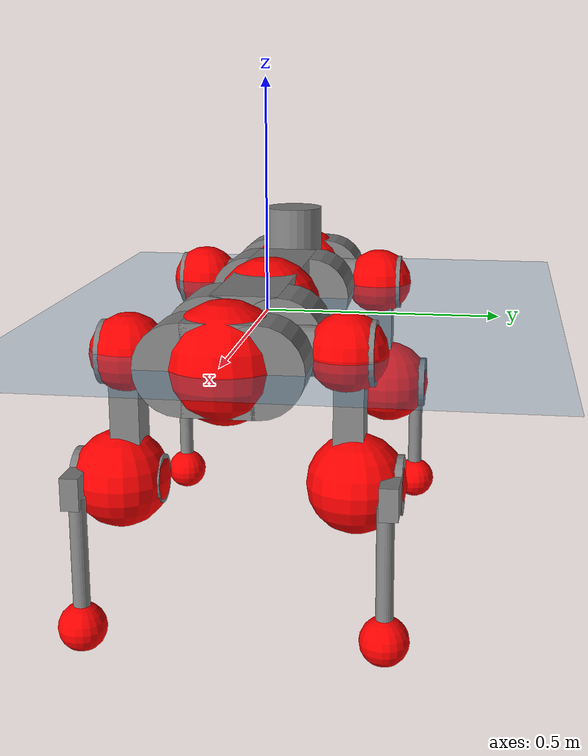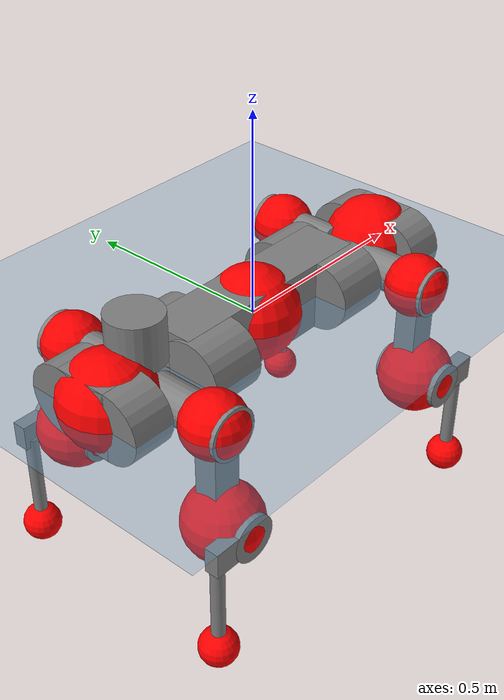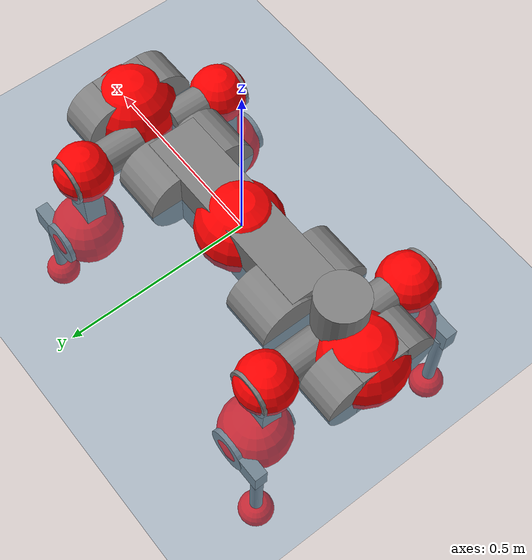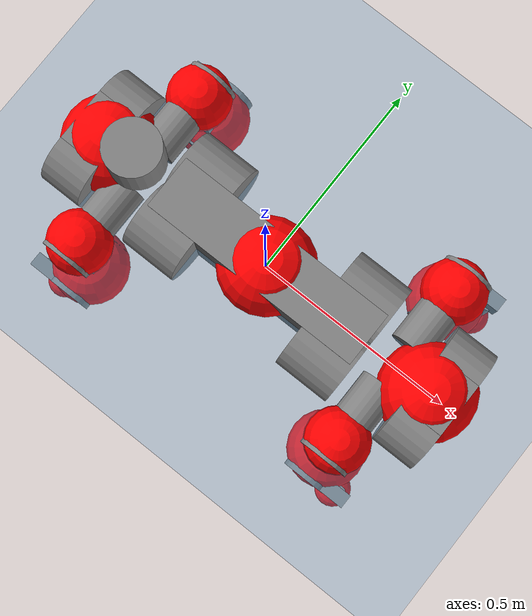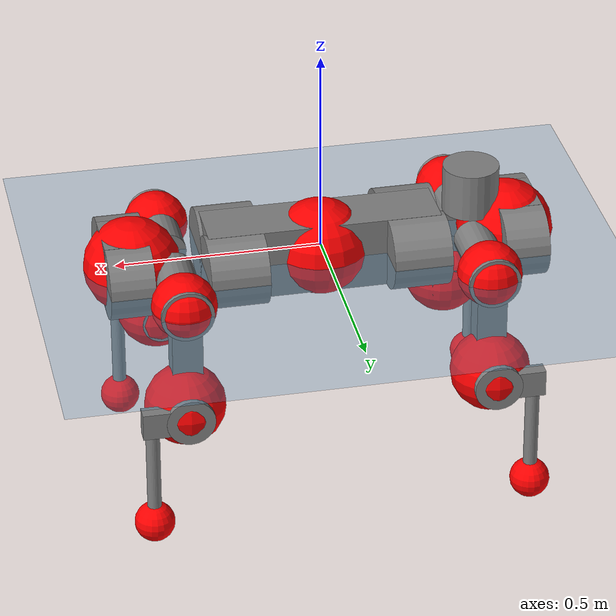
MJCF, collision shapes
<mujoco model="anymal_c">
  <compiler angle="radian" assetdir="assets" balanceinertia="true" inertiafromgeom="false"/>

  <option timestep="0.005" density="1.2" viscosity="2e-05"/>

  <size nkey="1"/>

  <visual>
    <quality shadowsize="8192"/>
    <map shadowclip="0.5"/>
  </visual>

  <default>
    <default class="/">
      <material specular="0" shininess="0.25"/>
      <geom contype="0" conaffinity="0" group="1" solref="-1000 -80"/>
      <site size="0.01 0.005 0.005" group="5"/>
      <general forcelimited="true" forcerange="-80 80" biastype="affine" gainprm="80" biasprm="0 -80 -2"/>
      <default class="anymal_c">
        <joint armature="0.01" damping="0.01" frictionloss="0.1"/>
        <default class="visual">
          <geom type="mesh" group="2"/>
          <default class="visual_zflip"/>
        </default>
        <default class="collision">
          <geom type="cylinder" group="3"/>
          <default class="foot">
            <geom size="0.03 0 0" type="sphere" condim="6" priority="1" friction="0.8 0.02 0.01" solimp="0.015 1 0.03"/>
          </default>
        </default>
      </default>
      <default class="reward_collision_sphere">
        <geom group="5" rgba="1 0 0 1"/>
      </default>
    </default>
  </default>

  <asset>
    <texture type="skybox" colorspace="auto" name="//unnamed_texture_0" builtin="gradient" rgb1="0.95 0.95 0.95" rgb2="0.95 0.95 0.95" width="100" height="600"/>
    <texture type="2d" colorspace="auto" name="texplane" builtin="checker" rgb1="0.345 0.575 0.748" rgb2="0.345 0.575 0.748" markrgb="1 1 1" width="512" height="512"/>
    <texture type="2d" colorspace="linear" name="base" file="base.png"/>
    <texture type="2d" colorspace="linear" name="top_shell" file="top_shell.png"/>
    <texture type="2d" colorspace="linear" name="bottom_shell" file="bottom_shell.png"/>
    <texture type="2d" colorspace="linear" name="remote" file="remote.png"/>
    <texture type="2d" colorspace="linear" name="hatch" file="hatch.png"/>
    <texture type="2d" colorspace="linear" name="handle" file="handle.png"/>
    <texture type="2d" colorspace="linear" name="face" file="face.png"/>
    <texture type="2d" colorspace="linear" name="battery" file="battery.png"/>
    <texture type="2d" colorspace="linear" name="lidar_cage" file="lidar_cage.png"/>
    <texture type="2d" colorspace="linear" name="depth_camera" file="depth_camera.png"/>
    <texture type="2d" colorspace="linear" name="wide_angle_camera" file="wide_angle_camera.png"/>
    <texture type="2d" colorspace="linear" name="lidar" file="lidar.png"/>
    <texture type="2d" colorspace="linear" name="drive" file="drive.png"/>
    <texture type="2d" colorspace="linear" name="hip_l" file="hip_l.png"/>
    <texture type="2d" colorspace="linear" name="shank_l" file="shank_l.png"/>
    <texture type="2d" colorspace="linear" name="foot" file="foot.png"/>
    <texture type="2d" colorspace="linear" name="thigh" file="thigh.png"/>
    <texture type="2d" colorspace="linear" name="shank_r" file="shank_r.png"/>
    <texture type="2d" colorspace="linear" name="hip_r" file="hip_r.png"/>
    <material name="MatPlane" class="/" texture="texplane" texuniform="true" texrepeat="2 2" specular="0.9" shininess="0.5"/>
    <material name="black_plastic" class="/" rgba="0.007 0.007 0.007 1"/>
    <material name="green" class="/" rgba="0.052 0.178 0.033 1"/>
    <material name="red" class="/" rgba="0.178 0.006 0.005 1"/>
    <material name="yellow" class="/" rgba="0.178 0.119 0.006 1"/>
    <material name="lwl" class="/" rgba="0.8 0.8 0.8 1"/>
    <material name="base" class="/" texture="base"/>
    <material name="top_shell" class="/" texture="top_shell"/>
    <material name="bottom_shell" class="/" texture="bottom_shell"/>
    <material name="hip_l" class="/" texture="hip_l"/>
    <material name="thigh" class="/" texture="thigh"/>
    <material name="shank_l" class="/" texture="shank_l"/>
    <material name="foot" class="/" texture="foot"/>
    <material name="hip_r" class="/" texture="hip_r"/>
    <material name="shank" class="/" texture="shank_r"/>
    <material name="hatch" class="/" texture="hatch"/>
    <material name="remote" class="/" texture="remote"/>
    <material name="handle" class="/" texture="handle"/>
    <material name="face" class="/" texture="face"/>
    <material name="depth_camera" class="/" texture="depth_camera"/>
    <material name="wide_angle_camera" class="/" texture="wide_angle_camera"/>
    <material name="battery" class="/" texture="battery"/>
    <material name="lidar_cage" class="/" texture="lidar_cage"/>
    <material name="lidar" class="/" texture="lidar"/>
    <material name="drive" class="/" texture="drive"/>
    <mesh name="base_0" class="/" file="base_0.obj"/>
    <mesh name="base_1" class="/" file="base_1.obj"/>
    <mesh name="base_2" class="/" file="base_2.obj"/>
    <mesh name="base_3" class="/" file="base_3.obj"/>
    <mesh name="base_4" class="/" file="base_4.obj"/>
    <mesh name="base_5" class="/" file="base_5.obj"/>
    <mesh name="top_shell" class="/" file="top_shell.obj"/>
    <mesh name="bottom_shell" class="/" file="bottom_shell.obj"/>
    <mesh name="remote" class="/" file="remote.obj"/>
    <mesh name="handle" class="/" file="handle.obj"/>
    <mesh name="face" class="/" file="face.obj"/>
    <mesh name="wide_angle_camera" class="/" file="wide_angle_camera.obj"/>
    <mesh name="depth_camera" class="/" file="depth_camera.obj"/>
    <mesh name="battery" class="/" file="battery.obj"/>
    <mesh name="lidar_cage" class="/" file="lidar_cage.obj"/>
    <mesh name="lidar" class="/" file="lidar.obj"/>
    <mesh name="drive" class="/" file="drive.obj"/>
    <mesh name="hip_l" class="/" file="hip_l.obj"/>
    <mesh name="thigh" class="/" file="thigh.obj"/>
    <mesh name="shank_l" class="/" file="shank_l.obj"/>
    <mesh name="foot" class="/" file="foot.obj"/>
    <mesh name="hip_r" class="/" file="hip_r.obj"/>
    <mesh name="hatch" class="/" file="hatch.obj"/>
    <mesh name="shank_r" class="/" file="shank_r.obj"/>
  </asset>

  <worldbody>
    <geom name="floor" class="/" size="100 100 0.125" type="plane" group="0" material="MatPlane"/>
    <light name="toplight_shadow" class="/" pos="0 0 5" dir="0.0990148 0.0990148 -0.990148" type="directional" ambient="0.04 0.04 0.04" diffuse="0.55 0.55 0.55" specular="0.12 0.12 0.12"/>
    <light name="toplight_fill" class="/" pos="0 0 5" dir="0.0990148 0.0990148 -0.990148" type="directional" castshadow="false" ambient="0.04 0.04 0.04" diffuse="0.3 0.3 0.3" specular="0.08 0.08 0.08"/>
    <body name="trunk" childclass="anymal_c" pos="0.00230652 0.00234108 0.000111396" quat="1 0.000480519 0.000161608 0.000492207">
      <inertial pos="0.00271737 -0.000615681 0.0430785" quat="0.508855 0.491886 0.509003 0.48993" mass="17.7716" diaginertia="0.628207 0.653806 0.111877"/>
      <joint name="//unnamed_joint_0" type="free" armature="0" damping="0" frictionloss="0"/>
      <geom name="//unnamed_geom_1" class="visual" material="green" mesh="base_0"/>
      <geom name="//unnamed_geom_2" class="visual" material="yellow" mesh="base_1"/>
      <geom name="//unnamed_geom_3" class="visual" material="red" mesh="base_2"/>
      <geom name="//unnamed_geom_4" class="visual" material="black_plastic" mesh="base_3"/>
      <geom name="//unnamed_geom_5" class="visual" material="lwl" mesh="base_4"/>
      <geom name="//unnamed_geom_6" class="visual" material="base" mesh="base_5"/>
      <geom name="trunk_1" class="collision" size="0.282572 0.068207 0.0876948" type="box"/>
      <geom name="trunk_2" class="collision" size="0.0876948 0.070643" pos="0.220653 0.0710704 0" quat="0.707107 0 0.707107 0"/>
      <geom name="trunk_3" class="collision" size="0.0876948 0.070643" pos="-0.220653 0.0710704 0" quat="0.707107 0 0.707107 0"/>
      <geom name="trunk_4" class="collision" size="0.0876948 0.070643" pos="0.220653 -0.0710704 0" quat="0.707107 0 0.707107 0"/>
      <geom name="trunk_5" class="collision" size="0.0876948 0.070643" pos="-0.220653 -0.0710704 0" quat="0.707107 0 0.707107 0"/>
      <geom name="//unnamed_geom_12" class="visual" material="top_shell" mesh="top_shell"/>
      <geom name="//unnamed_geom_13" class="visual" material="bottom_shell" mesh="bottom_shell"/>
      <geom name="//unnamed_geom_14" class="visual" material="remote" mesh="remote"/>
      <geom name="//unnamed_geom_15" class="visual" material="handle" mesh="handle"/>
      <geom name="//unnamed_geom_16" class="visual" pos="0.420508 0 0" quat="1 0 0 0" material="face" mesh="face"/>
      <geom name="trunk_6" class="collision" size="0.0535912 0.068207 0.0876948" pos="0.476306 0 0" type="box"/>
      <geom name="//unnamed_geom_18" class="collision" size="0.0876948 0.0535912" pos="0.476306 0.0710704 0" quat="0.707107 0 0.707107 0"/>
      <geom name="//unnamed_geom_19" class="collision" size="0.0876948 0.0535912" pos="0.476306 -0.0710704 0" quat="0.707107 0 0.707107 0"/>
      <geom name="//unnamed_geom_20" class="visual" pos="0.468337 0 -0.0251659" quat="0.965926 0 0.258819 0" material="depth_camera" mesh="depth_camera"/>
      <geom name="//unnamed_geom_21" class="visual" pos="0.520436 0 0.0133738" material="wide_angle_camera" mesh="wide_angle_camera"/>
      <geom name="//unnamed_geom_22" class="visual_zflip" pos="-0.420508 0 0" quat="0 0 0 1" material="face" mesh="face"/>
      <geom name="trunk_7" class="collision" size="0.0535912 0.068207 0.0876948" pos="-0.476306 0 0" quat="0 0 0 1" type="box"/>
      <geom name="//unnamed_geom_24" class="collision" size="0.0876948 0.0535912" pos="-0.476306 -0.0710704 0" quat="0 -0.707107 0 0.707107"/>
      <geom name="//unnamed_geom_25" class="collision" size="0.0876948 0.0535912" pos="-0.476306 0.0710704 0" quat="0 -0.707107 0 0.707107"/>
      <geom name="//unnamed_geom_26" class="visual" pos="-0.468337 0 -0.0251659" quat="0 -0.258819 0 0.965926" material="depth_camera" mesh="depth_camera"/>
      <geom name="//unnamed_geom_27" class="visual_zflip" pos="-0.520436 0 0.0133738" quat="0 0 0 1" material="wide_angle_camera" mesh="wide_angle_camera"/>
      <geom name="//unnamed_geom_28" class="visual" material="battery" mesh="battery"/>
      <geom name="//unnamed_geom_29" class="visual" pos="0 0.0776346 0.026873" quat="0.683013 -0.183013 0.183013 0.683013" material="depth_camera" mesh="depth_camera"/>
      <geom name="//unnamed_geom_30" class="visual" pos="0 -0.0776346 0.026873" quat="0.683013 0.183013 0.183013 -0.683013" material="depth_camera" mesh="depth_camera"/>
      <geom name="//unnamed_geom_31" class="visual" pos="-0.369276 0 0.0656628" quat="1 0 0 0" material="lidar_cage" mesh="lidar_cage"/>
      <geom name="trunk_8" class="collision" size="0.068207 0.0584632" pos="-0.369276 0 0.119265"/>
      <geom name="//unnamed_geom_33" class="visual" pos="-0.369276 3.1268e-07 0.127037" quat="0.707107 0 0 -0.707107" material="lidar" mesh="lidar"/>
      <geom name="//unnamed_geom_34" class="visual" pos="0.304247 0.105547 2.10313e-09" quat="0.258819 0.965926 0 0" material="drive" mesh="drive"/>
      <geom name="//unnamed_geom_35" class="visual" pos="0.304247 -0.105547 -2.10313e-09" quat="0.258819 -0.965926 0 0" material="drive" mesh="drive"/>
      <geom name="//unnamed_geom_36" class="visual" pos="-0.304247 0.105547 -2.10313e-09" quat="0 0 0.965926 -0.258819" material="drive" mesh="drive"/>
      <geom name="//unnamed_geom_37" class="visual" pos="-0.304247 -0.105547 2.10313e-09" quat="0 0 -0.965926 -0.258819" material="drive" mesh="drive"/>
      <geom name="//unnamed_geom_38" class="visual" pos="0.117681 0 0.0652161" quat="1 0 0 0" material="hatch" mesh="hatch"/>
      <geom name="//unnamed_geom_39" class="reward_collision_sphere" size="0.116926"/>
      <geom name="//unnamed_geom_40" class="reward_collision_sphere" size="0.116926" pos="0.456523 0 0"/>
      <geom name="//unnamed_geom_41" class="reward_collision_sphere" size="0.116926" pos="-0.456523 0 0"/>
      <site name="imu" pos="0.249405 0.0444372 0.0351319" size="0.00974386"/>
      <camera name="track" pos="0 -2.03058 0" quat="0.707107 0.707107 0 0" mode="trackcom"/>
      <camera name="ego_camera" pos="0.456523 0 -0.0357349" quat="-0.5 -0.5 0.5 0.5"/>
      <body name="LF_HIP" pos="0.305281 0.106385 0.004326" quat="0.257736 0.96621 -0.00314643 0.000699393">
        <inertial pos="0.0577664 -0.0132852 -0.00923671" quat="-0.124132 0.702859 -0.130969 0.688061" mass="2.38675" diaginertia="0.00587906 0.00489998 0.00173908"/>
        <joint name="LF_HAA" pos="0 0 0" axis="0.999997 0.00142219 -0.00179875" range="-0.823755 0.502718" armature="0.00822904" damping="0.02299" frictionloss="0.0858218"/>
        <geom name="//unnamed_geom_42" class="visual" pos="0 0.000123717 -2.03205e-05" quat="0.258819 -0.965926 0 0" material="hip_l" mesh="hip_l"/>
        <geom name="//unnamed_geom_43" class="visual" pos="0.0607683 -0.0736009 -0.0415917" quat="0.183013 -0.683013 0.683013 0.183013" material="drive" mesh="drive"/>
        <geom name="//unnamed_geom_44" class="collision" size="0.0487193 0.068207" pos="0.0607683 -0.0121427 -0.00616873" quat="-0.353553 -0.612372 0.612372 -0.353553"/>
        <body name="LF_THIGH" pos="0.0615248 -0.0742742 -0.0412621" quat="0.183026 -0.683037 0.682987 0.183001">
          <inertial pos="0.0307077 0.00538213 -0.212255" quat="0.993254 -0.0140424 -0.0790104 0.0837015" mass="2.8034" diaginertia="0.0340349 0.0330136 0.00249231"/>
          <joint name="LF_HFE" pos="0 0 0" axis="0.999985 0.00173076 0.00523723" range="-3.15679 3.00779" armature="0.0100195" damping="0.0370568" frictionloss="0.0962724"/>
          <geom name="//unnamed_geom_45" class="visual" pos="-1.58349e-05 -2.49521e-08 0" quat="0.707107 0 0 -0.707107" material="thigh" mesh="thigh"/>
          <geom name="//unnamed_geom_46" class="collision" size="0.0633351 0.0389755" pos="0.0405798 0 0" quat="0.5 0.5 -0.5 -0.5"/>
          <geom name="//unnamed_geom_47" class="collision" size="0.0365395 0.0292316 0.137694" pos="0.0304349 0 -0.126246" quat="0.707107 0 0 -0.707107" type="box"/>
          <geom name="//unnamed_geom_48" class="visual" pos="0.101754 0 -0.254611" quat="1 0 0 0" material="drive" mesh="drive"/>
          <geom name="//unnamed_geom_49" class="collision" size="0.0487193 0.068207" pos="0.0307392 0 -0.254611" quat="0.707107 0 0.707107 0"/>
          <geom name="//unnamed_geom_50" class="reward_collision_sphere" size="0.0779509" pos="0.0253624 0 0"/>
          <body name="LF_SHANK" pos="0.0944515 -0.00601883 -0.256352" quat="1 1.48006e-05 0.000103532 2.70289e-05">
            <inertial pos="0.00384434 -0.0615594 -0.0739742" quat="0.993267 -0.11361 0.000241019 -0.0226744" mass="0.511446" diaginertia="0.0107042 0.00974905 0.000634475"/>
            <joint name="LF_KFE" pos="0 0 0" axis="0.999996 0.00213271 0.00200513" stiffness="0.0313809" range="-3.17583 3.2299" armature="0.0102374" damping="0.00675388" frictionloss="0.0863253"/>
            <geom name="//unnamed_geom_51" class="visual" pos="-5.16341e-06 -2.75316e-05 0" quat="0.707107 0 0 -0.707107" material="shank_l" mesh="shank_l"/>
            <geom name="LF_kfe_act" class="collision" size="0.0584632 0.0194877" pos="0.0202899 0 0" quat="0.5 0.5 -0.5 -0.5"/>
            <geom name="//unnamed_geom_53" class="collision" size="0.0560262 0.0328855 0.0185133" pos="0.0202899 -0.0583782 0" quat="0.5 0.5 -0.5 -0.5" type="box"/>
            <geom name="//unnamed_geom_54" class="visual" pos="0.0132392 -0.0893038 -0.301933" quat="0.382683 0 0 -0.92388" material="foot" mesh="foot"/>
            <geom name="LF_calf" class="collision" size="0.0170518 0.137634" pos="0.0132392 -0.0892949 -0.150966" quat="0.707107 0 0 -0.707107"/>
            <geom name="LF_foot" class="foot" size="0.0352182" pos="0.0132392 -0.0892949 -0.281832" quat="0.707107 0 0 -0.707107"/>
            <geom name="//unnamed_geom_57" class="reward_collision_sphere" size="0.0974386" pos="-0.0507248 0 0"/>
            <geom name="//unnamed_geom_58" class="reward_collision_sphere" size="0.0487193" pos="0.0132392 -0.0892949 -0.281832"/>
            <site name="LF_foot" class="foot" pos="0.0132392 -0.0892949 -0.281832" quat="0.707107 0 0 -0.707107" size="0.00974386"/>
          </body>
        </body>
      </body>
      <body name="RF_HIP" pos="0.304543 -0.105514 -0.00563307" quat="0.259179 -0.965829 0.000701669 -5.89285e-05">
        <inertial pos="0.0556864 0.0175539 -0.00702918" quat="0.126865 0.675709 0.153355 0.709793" mass="2.40737" diaginertia="0.00585727 0.00496778 0.00178664"/>
        <joint name="RF_HAA" pos="0 0 0" axis="0.999999 -0.00109888 -0.000237833" range="-0.542231 0.752068" armature="0.00981364" damping="0.00971051" frictionloss="0.104408"/>
        <geom name="//unnamed_geom_59" class="visual" pos="0 -0.000123717 -2.03204e-05" quat="0.258819 0.965926 0 0" material="hip_r" mesh="hip_r"/>
        <geom name="//unnamed_geom_60" class="visual" pos="0.0607683 0.0736009 -0.0415917" quat="0.183013 0.683013 0.683013 -0.183013" material="drive" mesh="drive"/>
        <geom name="//unnamed_geom_61" class="collision" size="0.0487193 0.068207" pos="0.0607683 0.0121427 -0.00616873" quat="-0.353553 0.612372 0.612372 0.353553"/>
        <body name="RF_THIGH" pos="0.0610984 0.0700383 -0.0341082" quat="0.182846 0.68326 0.682823 -0.182962">
          <inertial pos="0.0321179 1.88657e-05 -0.21348" quat="0.993598 -0.0232642 -0.0497108 0.0987484" mass="2.693" diaginertia="0.0303066 0.0300554 0.00221941"/>
          <joint name="RF_HFE" pos="0 0 0" axis="0.999987 -0.00262354 0.00448415" stiffness="0.00591785" range="-3.02682 3.07352" armature="0.0112385" damping="0.0136951" frictionloss="0.108182"/>
          <geom name="//unnamed_geom_62" class="visual" pos="-1.58349e-05 -2.49521e-08 0" quat="0.707107 0 0 -0.707107" material="thigh" mesh="thigh"/>
          <geom name="//unnamed_geom_63" class="collision" size="0.0633351 0.0389755" pos="0.0405798 0 0" quat="0.5 0.5 0.5 0.5"/>
          <geom name="//unnamed_geom_64" class="collision" size="0.0365395 0.0292316 0.137694" pos="0.0304349 0 -0.126246" quat="0.707107 0 0 0.707107" type="box"/>
          <geom name="//unnamed_geom_65" class="visual" pos="0.101754 0 -0.254611" quat="1 0 0 0" material="drive" mesh="drive"/>
          <geom name="//unnamed_geom_66" class="collision" size="0.0487193 0.068207" pos="0.0307392 0 -0.254611" quat="0.707107 0 0.707107 0"/>
          <geom name="//unnamed_geom_67" class="reward_collision_sphere" size="0.0779509" pos="0.0253624 0 0"/>
          <body name="RF_SHANK" pos="0.0999876 0.00240406 -0.255156" quat="1 0.000228298 0.000253328 8.17958e-05">
            <inertial pos="0.0081473 0.0633469 -0.0795566" quat="0.993187 0.11389 -0.000159073 0.0246845" mass="0.618323" diaginertia="0.0120663 0.00994975 0.000740685"/>
            <joint name="RF_KFE" pos="0 0 0" axis="0.999999 -0.00101557 0.000629766" range="-3.08991 3.1463" armature="0.00832602" damping="0.00940805" frictionloss="0.0973431"/>
            <geom name="//unnamed_geom_68" class="visual" pos="-5.16338e-06 2.75315e-05 0" quat="0.707107 0 0 0.707107" material="shank" mesh="shank_r"/>
            <geom name="RF_kfe_act" class="collision" size="0.0584632 0.0194877" pos="0.0202899 0 0" quat="0.5 0.5 0.5 0.5"/>
            <geom name="//unnamed_geom_70" class="collision" size="0.0560262 0.0328855 0.0185133" pos="0.0202899 0.0583782 0" quat="0.5 0.5 0.5 0.5" type="box"/>
            <geom name="//unnamed_geom_71" class="visual" pos="0.0132392 0.0893038 -0.301933" quat="0.382683 0 0 0.92388" material="foot" mesh="foot"/>
            <geom name="RF_calf" class="collision" size="0.0170518 0.137634" pos="0.0132392 0.0892949 -0.150966" quat="0.707107 0 0 0.707107"/>
            <geom name="RF_foot" class="foot" size="0.0307314" pos="0.0132392 0.0892949 -0.281832" quat="0.707107 0 0 0.707107"/>
            <geom name="//unnamed_geom_74" class="reward_collision_sphere" size="0.0974386" pos="-0.0507248 0 0"/>
            <geom name="//unnamed_geom_75" class="reward_collision_sphere" size="0.0487193" pos="0.0132392 0.0892949 -0.281832"/>
            <site name="RF_foot" class="foot" pos="0.0132392 0.0892949 -0.281832" quat="0.707107 0 0 0.707107" size="0.00974386"/>
          </body>
        </body>
      </body>
      <body name="LH_HIP" pos="-0.305723 0.105577 0.00523961" quat="0.000179656 0.00028368 0.965938 -0.258773">
        <inertial pos="0.0576111 0.0132008 -0.0023384" quat="0.140349 0.685172 0.121912 0.704257" mass="2.339" diaginertia="0.00578595 0.00527379 0.0018627"/>
        <joint name="LH_HAA" pos="0 0 0" axis="0.999999 -0.000438939 -0.00141341" stiffness="0.00641648" range="-0.626733 0.620684" armature="0.0096726" damping="0.0127284" frictionloss="0.0732466"/>
        <geom name="//unnamed_geom_76" class="visual" pos="0 -0.000123717 -2.03204e-05" quat="-0.258819 -0.965926 0 0" material="hip_r" mesh="hip_r"/>
        <geom name="//unnamed_geom_77" class="visual" pos="0.0607683 0.0736009 -0.0415917" quat="0.183013 0.683013 0.683013 -0.183013" material="drive" mesh="drive"/>
        <geom name="//unnamed_geom_78" class="collision" size="0.0487193 0.068207" pos="0.0607683 0.0121427 -0.00616873" quat="-0.353553 0.612372 0.612372 0.353553"/>
        <body name="LH_THIGH" pos="0.0608742 0.072512 -0.0341438" quat="0.183019 0.682997 0.683024 -0.183021">
          <inertial pos="0.0359416 0.00212122 -0.212342" quat="0.994744 0.0093374 -0.0636003 0.0796987" mass="2.78165" diaginertia="0.0351388 0.0328985 0.00255746"/>
          <joint name="LH_HFE" pos="0 0 0" axis="0.999728 0.0107095 0.0207221" range="-3.04177 3.09188" armature="0.010385" damping="0.0155098" frictionloss="0.0958729"/>
          <geom name="//unnamed_geom_79" class="visual" pos="-1.58349e-05 -2.49521e-08 0" quat="0.707107 0 0 -0.707107" material="thigh" mesh="thigh"/>
          <geom name="//unnamed_geom_80" class="collision" size="0.0633351 0.0389755" pos="0.0405798 0 0" quat="0.5 0.5 -0.5 -0.5"/>
          <geom name="//unnamed_geom_81" class="collision" size="0.0365395 0.0292316 0.137694" pos="0.0304349 0 -0.126246" quat="0.707107 0 0 -0.707107" type="box"/>
          <geom name="//unnamed_geom_82" class="visual" pos="0.101754 0 -0.254611" quat="1 0 0 0" material="drive" mesh="drive"/>
          <geom name="//unnamed_geom_83" class="collision" size="0.0487193 0.068207" pos="0.0307392 0 -0.254611" quat="0.707107 0 0.707107 0"/>
          <geom name="//unnamed_geom_84" class="reward_collision_sphere" size="0.0779509" pos="0.0253624 0 0"/>
          <body name="LH_SHANK" pos="0.102938 0.000576336 -0.252096" quat="0.999999 0.00110798 0.000575427 -0.000314996">
            <inertial pos="0.00483945 0.0632275 -0.0738388" quat="0.991868 0.123692 0.0141008 0.0264355" mass="0.558201" diaginertia="0.0109365 0.00999518 0.000620942"/>
            <joint name="LH_KFE" pos="0 0 0" axis="1 0.00013355 0.000531021" stiffness="0.0352567" range="-3.11374 3.13558" armature="0.0105755" damping="0.0216056" frictionloss="0.0931086"/>
            <geom name="//unnamed_geom_85" class="visual" pos="-5.16338e-06 2.75315e-05 0" quat="-0.707107 0 0 -0.707107" material="shank" mesh="shank_r"/>
            <geom name="LH_kfe_act" class="collision" size="0.0584632 0.0194877" pos="0.0202899 0 0" quat="0.5 0.5 -0.5 -0.5"/>
            <geom name="//unnamed_geom_87" class="collision" size="0.0560262 0.0328855 0.0185133" pos="0.0202899 0.0583782 0" quat="0.5 0.5 -0.5 -0.5" type="box"/>
            <geom name="//unnamed_geom_88" class="visual" pos="0.0132392 0.0893038 -0.301933" quat="-0.382683 0 0 -0.92388" material="foot" mesh="foot"/>
            <geom name="LH_calf" class="collision" size="0.0170518 0.137634" pos="0.0132392 0.0892949 -0.150966" quat="0.707107 0 0 -0.707107"/>
            <geom name="LH_foot" class="foot" size="0.03058" pos="0.0132392 0.0892949 -0.281832" quat="0.707107 0 0 -0.707107"/>
            <geom name="//unnamed_geom_91" class="reward_collision_sphere" size="0.0974386" pos="-0.0507248 0 0"/>
            <geom name="//unnamed_geom_92" class="reward_collision_sphere" size="0.0487193" pos="0.0132392 0.0892949 -0.281832"/>
            <site name="LH_foot" class="foot" pos="0.0132392 0.0892949 -0.281832" quat="0.707107 0 0 -0.707107" size="0.00974386"/>
          </body>
        </body>
      </body>
      <body name="RH_HIP" pos="-0.304418 -0.108119 -0.00274983" quat="0.000261092 -0.000464805 -0.965925 -0.258821">
        <inertial pos="0.0579897 -0.0203211 -0.00519242" quat="-0.1287 0.710251 -0.134506 0.678887" mass="2.80247" diaginertia="0.00661104 0.00557649 0.00202252"/>
        <joint name="RH_HAA" pos="0 0 0" axis="0.999978 -0.00398825 -0.00524256" range="-0.700012 0.561201" armature="0.00992143" damping="0.028253" frictionloss="0.10353"/>
        <geom name="//unnamed_geom_93" class="visual" pos="0 0.000123717 -2.03205e-05" quat="-0.258819 0.965926 0 0" material="hip_l" mesh="hip_l"/>
        <geom name="//unnamed_geom_94" class="visual" pos="0.0607683 -0.0736009 -0.0415917" quat="-0.183013 0.683013 -0.683013 -0.183013" material="drive" mesh="drive"/>
        <geom name="//unnamed_geom_95" class="collision" size="0.0487193 0.068207" pos="0.0607683 -0.0121427 -0.00616873" quat="0.353553 0.612372 -0.612372 0.353553"/>
        <body name="RH_THIGH" pos="0.0631447 -0.0758747 -0.0430264" quat="-0.183174 0.682883 -0.683074 -0.183105">
          <inertial pos="0.0326001 -0.00232845 -0.219738" quat="0.993491 -0.00431904 -0.0785141 0.0824122" mass="3.10747" diaginertia="0.034169 0.0328656 0.00238154"/>
          <joint name="RH_HFE" pos="0 0 0" axis="0.999971 -0.00454148 -0.00616167" range="-3.02709 3.04322" armature="0.0100464" damping="0.00824658" frictionloss="0.115927"/>
          <geom name="//unnamed_geom_96" class="visual" pos="-1.58349e-05 -2.49521e-08 0" quat="0.707107 0 0 -0.707107" material="thigh" mesh="thigh"/>
          <geom name="//unnamed_geom_97" class="collision" size="0.0633351 0.0389755" pos="0.0405798 0 0" quat="0.5 0.5 0.5 0.5"/>
          <geom name="//unnamed_geom_98" class="collision" size="0.0365395 0.0292316 0.137694" pos="0.0304349 0 -0.126246" quat="0.707107 0 0 0.707107" type="box"/>
          <geom name="//unnamed_geom_99" class="visual" pos="0.101754 0 -0.254611" quat="1 0 0 0" material="drive" mesh="drive"/>
          <geom name="//unnamed_geom_100" class="collision" size="0.0487193 0.068207" pos="0.0307392 0 -0.254611" quat="0.707107 0 0.707107 0"/>
          <geom name="//unnamed_geom_101" class="reward_collision_sphere" size="0.0779509" pos="0.0253624 0 0"/>
          <body name="RH_SHANK" pos="0.0959253 0.00058067 -0.256139" quat="0.999999 -0.00128942 -2.70484e-06 0.000299855">
            <inertial pos="0.00696781 -0.062289 -0.0713405" quat="0.993706 -0.1107 0.00455617 -0.0165552" mass="0.575958" diaginertia="0.0108536 0.00993602 0.000665048"/>
            <joint name="RH_KFE" pos="0 0 0" axis="0.999998 0.000612101 -0.00194645" stiffness="0.00140763" range="-3.12628 3.12199" armature="0.00961283" damping="0.0374749" frictionloss="0.0957599"/>
            <geom name="//unnamed_geom_102" class="visual" pos="-5.16341e-06 -2.75316e-05 0" quat="0.707107 0 0 -0.707107" material="shank_l" mesh="shank_l"/>
            <geom name="RH_kfe_act" class="collision" size="0.0584632 0.0194877" pos="0.0202899 0 0" quat="0.5 0.5 0.5 0.5"/>
            <geom name="//unnamed_geom_104" class="collision" size="0.0560262 0.0328855 0.0185133" pos="0.0202899 -0.0583782 0" quat="0.5 0.5 0.5 0.5" type="box"/>
            <geom name="//unnamed_geom_105" class="visual" pos="0.0132392 -0.0893038 -0.301933" quat="0.382683 0 0 -0.92388" material="foot" mesh="foot"/>
            <geom name="RH_calf" class="collision" size="0.0170518 0.137634" pos="0.0132392 -0.0892949 -0.150966" quat="0.707107 0 0 0.707107"/>
            <geom name="RH_foot" class="foot" size="0.02354" pos="0.0132392 -0.0892949 -0.281832" quat="0.707107 0 0 0.707107"/>
            <geom name="//unnamed_geom_108" class="reward_collision_sphere" size="0.0974386" pos="-0.0507248 0 0"/>
            <geom name="//unnamed_geom_109" class="reward_collision_sphere" size="0.0487193" pos="0.0132392 -0.0892949 -0.281832"/>
            <site name="RH_foot" class="foot" pos="0.0132392 -0.0892949 -0.281832" quat="0.707107 0 0 0.707107" size="0.00974386"/>
          </body>
        </body>
      </body>
    </body>
  </worldbody>

  <contact>
    <pair class="/" geom1="floor" geom2="LF_foot" name="//unnamed_contact_0"/>
    <pair class="/" geom1="floor" geom2="RF_foot" name="//unnamed_contact_1"/>
    <pair class="/" geom1="floor" geom2="LH_foot" name="//unnamed_contact_2"/>
    <pair class="/" geom1="floor" geom2="RH_foot" name="//unnamed_contact_3"/>
  </contact>

  <actuator>
    <general name="LF_HAA" class="/" joint="LF_HAA" forcerange="-86.859 86.859" gainprm="74.742" biasprm="0 -74.742 -1.7186"/>
    <general name="LF_HFE" class="/" joint="LF_HFE" forcerange="-65.9566 65.9566" gainprm="74.742" biasprm="0 -74.742 -1.7186"/>
    <general name="LF_KFE" class="/" joint="LF_KFE" forcerange="-92.4589 92.4589" gainprm="74.742" biasprm="0 -74.742 -1.7186"/>
    <general name="RF_HAA" class="/" joint="RF_HAA" forcerange="-86.235 86.235" gainprm="74.742" biasprm="0 -74.742 -1.7186"/>
    <general name="RF_HFE" class="/" joint="RF_HFE" forcerange="-75.2272 75.2272" gainprm="74.742" biasprm="0 -74.742 -1.7186"/>
    <general name="RF_KFE" class="/" joint="RF_KFE" forcerange="-55.7936 55.7936" gainprm="74.742" biasprm="0 -74.742 -1.7186"/>
    <general name="LH_HAA" class="/" joint="LH_HAA" forcerange="-62.5325 62.5325" gainprm="74.742" biasprm="0 -74.742 -1.7186"/>
    <general name="LH_HFE" class="/" joint="LH_HFE" forcerange="-78.5434 78.5434" gainprm="74.742" biasprm="0 -74.742 -1.7186"/>
    <general name="LH_KFE" class="/" joint="LH_KFE" forcerange="-87.9004 87.9004" gainprm="74.742" biasprm="0 -74.742 -1.7186"/>
    <general name="RH_HAA" class="/" joint="RH_HAA" forcerange="-80.7353 80.7353" gainprm="74.742" biasprm="0 -74.742 -1.7186"/>
    <general name="RH_HFE" class="/" joint="RH_HFE" forcerange="-98.0125 98.0125" gainprm="74.742" biasprm="0 -74.742 -1.7186"/>
    <general name="RH_KFE" class="/" joint="RH_KFE" forcerange="-88.1851 88.1851" gainprm="74.742" biasprm="0 -74.742 -1.7186"/>
  </actuator>

  <sensor>
    <gyro site="imu" name="imu_angular_velocity"/>
    <velocimeter site="imu" name="imu_linear_velocity"/>
    <framelinvel objtype="site" objname="LF_foot" name="LF_foot_global_linear_velocity"/>
    <framelinvel objtype="site" objname="RF_foot" name="RF_foot_global_linear_velocity"/>
    <framelinvel objtype="site" objname="LH_foot" name="LH_foot_global_linear_velocity"/>
    <framelinvel objtype="site" objname="RH_foot" name="RH_foot_global_linear_velocity"/>
  </sensor>

  <keyframe>
    <key name="home" qpos="0 0 0.55 1 0 0 0 0 0.4 -0.8 0 -0.4 0.8 0 -0.4 0.8 0 0.4 -0.8"/>
  </keyframe>
</mujoco>
